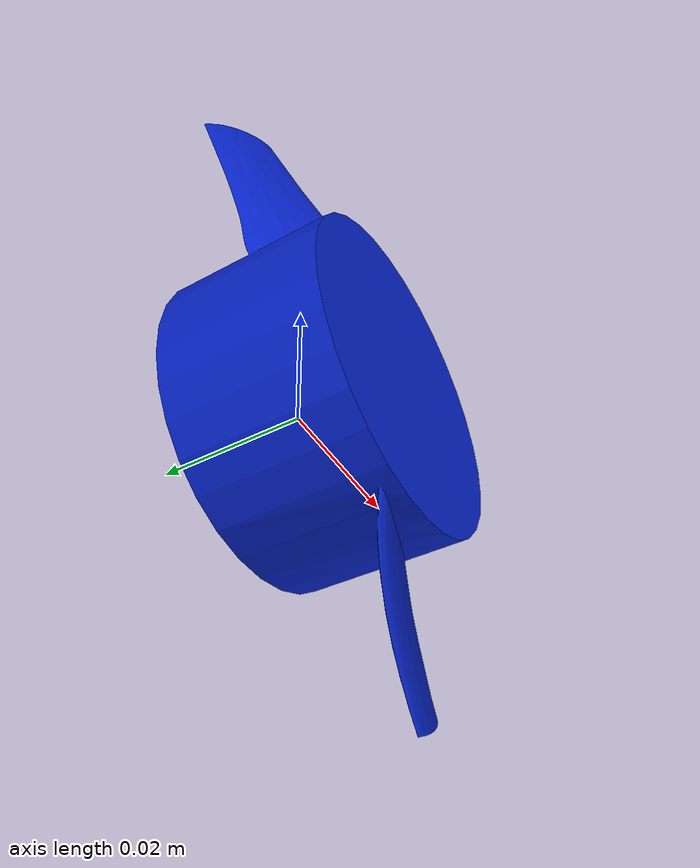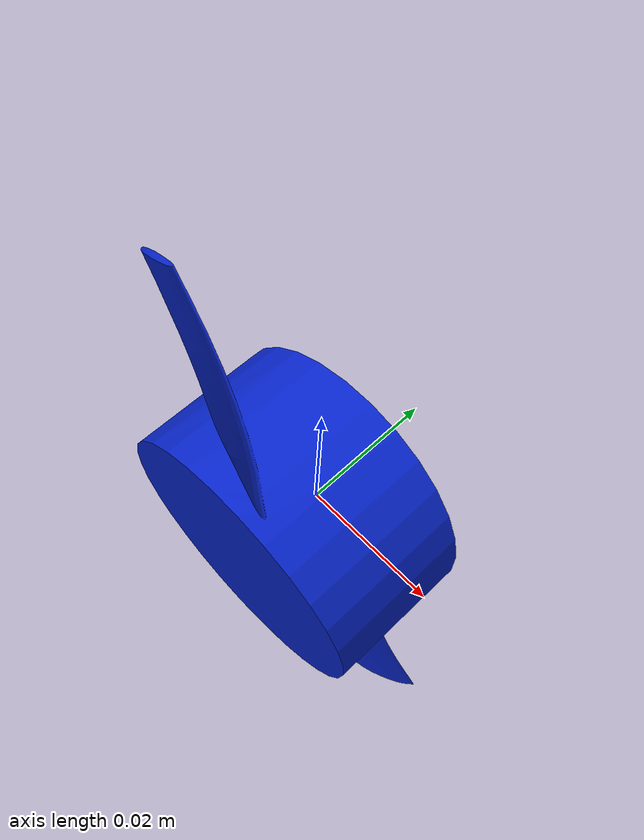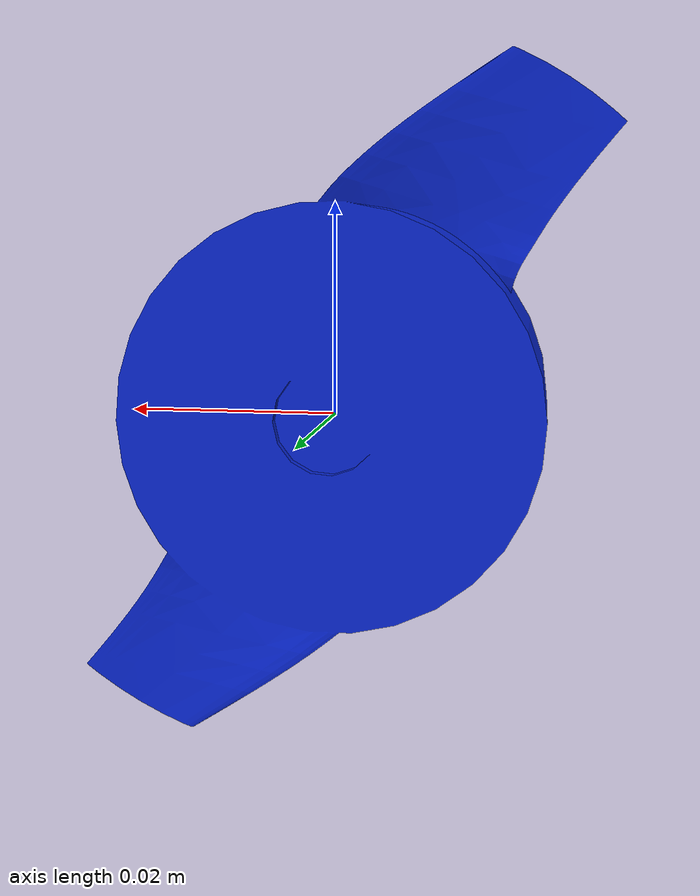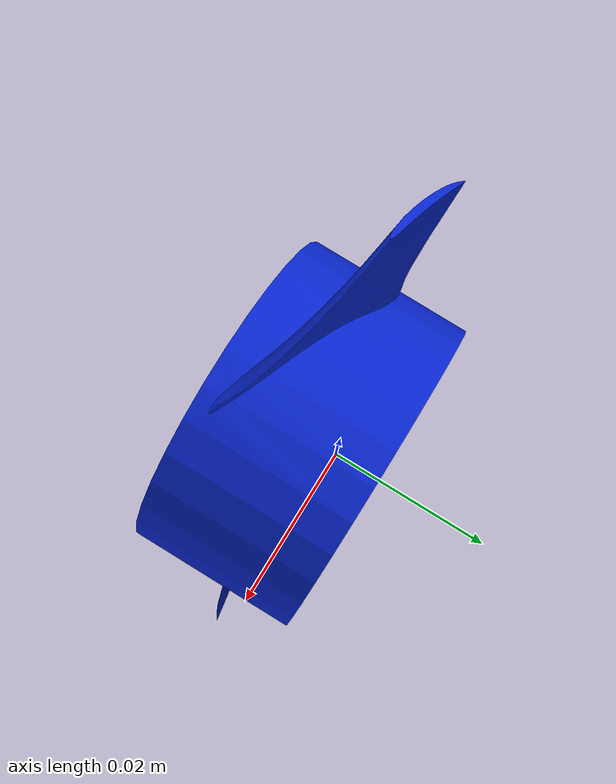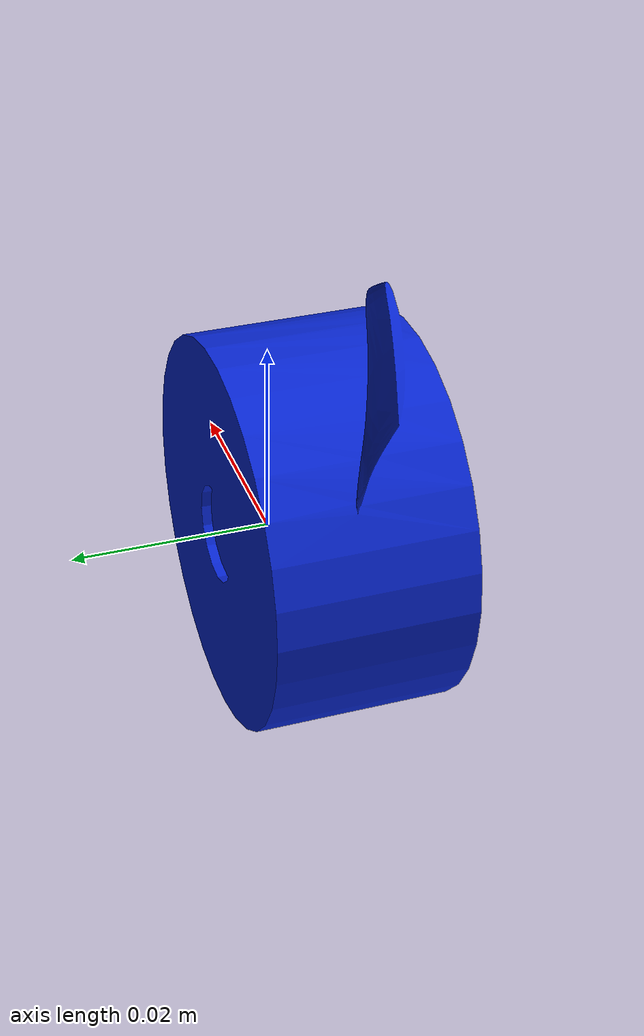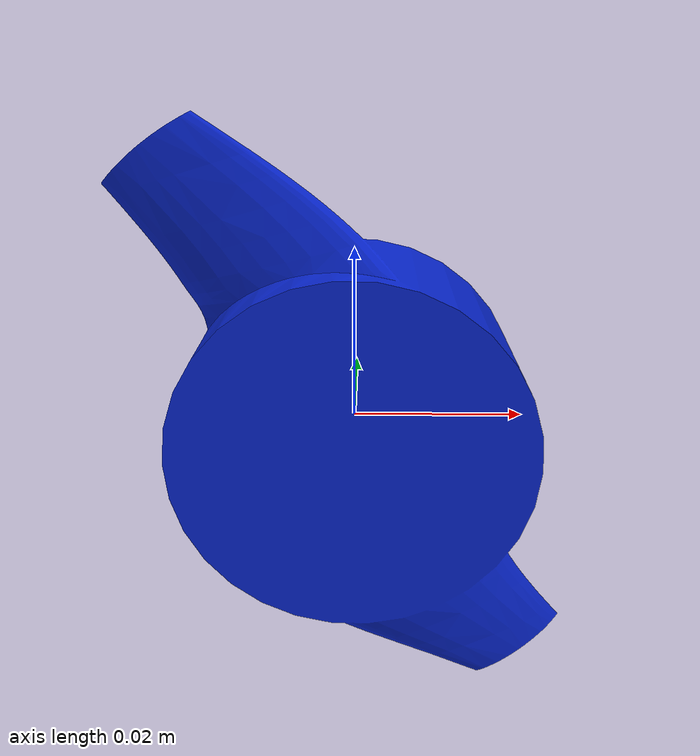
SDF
<sdf version='1.7'>
  <model name='T100-THRUSTER-PROP'>
    <link name='T100-THRUSTER-PROP'>
      <inertial>
        <pose>3.9e-05 -0.004977 0.009261 0 -0 0</pose>
        <mass>0.38044</mass>
        <inertia>
          <ixx>0.00039776</ixx>
          <ixy>-1.3762e-07</ixy>
          <ixz>-4.8314e-07</ixz>
          <iyy>0.00040427</iyy>
          <iyz>1.5933e-05</iyz>
          <izz>0.00027739</izz>
        </inertia>
      </inertial>
      <collision name='T100-THRUSTER-PROP_collision'>
        <pose>0 0 0 1.5708 -0 0</pose>
        <geometry>
          <mesh>
            <scale>1 1 1</scale>
            <uri>/home/jake/triton/simulation/models/T100-THRUSTER-PROP/meshes/T100-THRUSTER-PROP.dae</uri>
          </mesh>
        </geometry>
      </collision>
      <visual name='T100-THRUSTER-PROP_visual'>
        <pose>0 0 0 1.5708 -0 0</pose>
        <geometry>
          <mesh>
            <scale>1 1 1</scale>
            <uri>/home/jake/triton/simulation/models/T100-THRUSTER-PROP/meshes/T100-THRUSTER-PROP.dae</uri>
          </mesh>
        </geometry>
      </visual>
    </link>
  </model>
</sdf>
